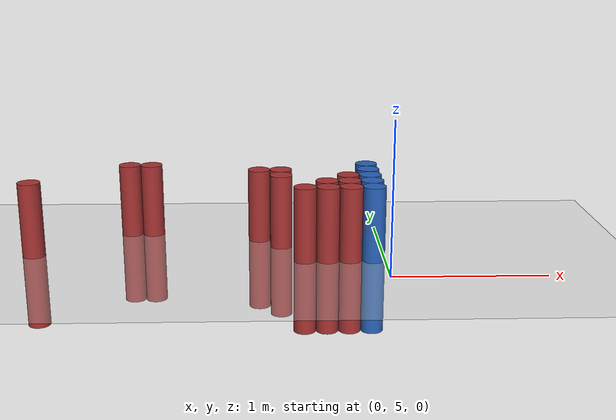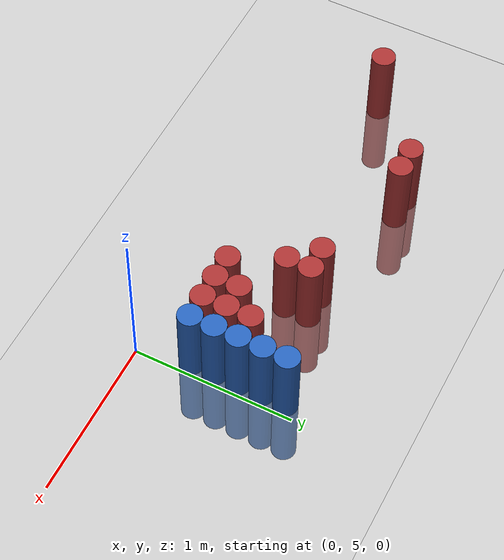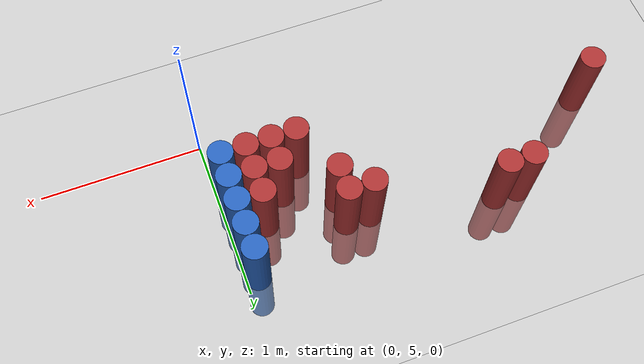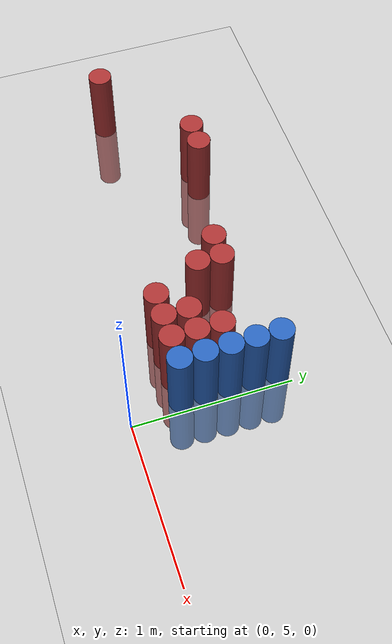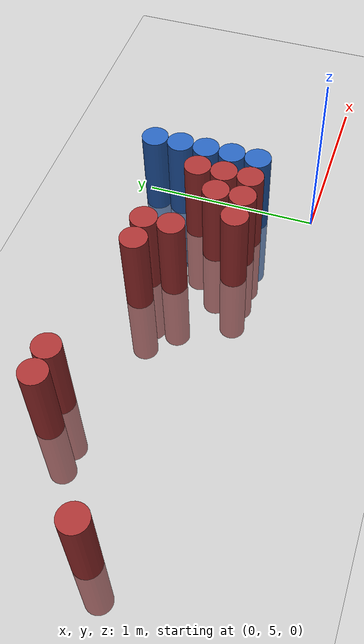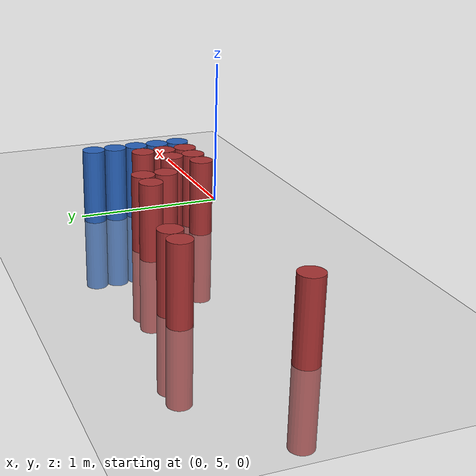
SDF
<sdf version="1.6">
 <world name="default">
  <model name="ground_plane">
   <static>1</static>
   <link name="link">
    <collision name="collision">
     <geometry><plane><normal>0 0 1</normal><size>100 100</size></plane></geometry>
     <surface><friction><ode><mu>100</mu><mu2>50</mu2></ode></friction></surface>
    </collision>
    <visual name="visual">
     <cast_shadows>0</cast_shadows>
     <geometry><plane><normal>0 0 1</normal><size>100 100</size></plane></geometry>
     <material>
      <script><uri>file://media/materials/scripts/gazebo.material</uri><name>Gazebo/Grey</name></script>
     </material>
    </visual>
   </link>
  </model>
  <model name="unit_cylinder_199">
   <static>1</static>
   <pose>-2.325000 5.475000 0.000000 0.000000 0.000000 0.000000</pose>
   <link name="link">
    <inertial>
     <mass>1</mass>
     <inertia><ixx>0.145833</ixx><ixy>0</ixy><ixz>0</ixz><iyy>0.145833</iyy><iyz>0</iyz><izz>0.125</izz></inertia>
    </inertial>
    <collision name="collision">
     <geometry><cylinder><radius>0.075000</radius><length>1</length></cylinder></geometry>
    </collision>
    <visual name="visual">
     <geometry><cylinder><radius>0.075000</radius><length>1</length></cylinder></geometry>
     <material>
      <ambient>0.648000 0.192000 0.192000 1</ambient>
      <diffuse>0.648000 0.192000 0.192000 1</diffuse>
     </material>
     <material>
      <script><name>Gazebo/Grey</name><uri>file://media/materials/scripts/gazebo.material</uri></script>
     </material>
    </visual>
   </link>
  </model>
  <model name="unit_cylinder_212">
   <static>1</static>
   <pose>-1.725000 5.925000 0.000000 0.000000 0.000000 0.000000</pose>
   <link name="link">
    <inertial>
     <mass>1</mass>
     <inertia><ixx>0.145833</ixx><ixy>0</ixy><ixz>0</ixz><iyy>0.145833</iyy><iyz>0</iyz><izz>0.125</izz></inertia>
    </inertial>
    <collision name="collision">
     <geometry><cylinder><radius>0.075000</radius><length>1</length></cylinder></geometry>
    </collision>
    <visual name="visual">
     <geometry><cylinder><radius>0.075000</radius><length>1</length></cylinder></geometry>
     <material>
      <ambient>0.648000 0.192000 0.192000 1</ambient>
      <diffuse>0.648000 0.192000 0.192000 1</diffuse>
     </material>
     <material>
      <script><name>Gazebo/Grey</name><uri>file://media/materials/scripts/gazebo.material</uri></script>
     </material>
    </visual>
   </link>
  </model>
  <model name="unit_cylinder_215">
   <static>1</static>
   <pose>-1.575000 5.925000 0.000000 0.000000 0.000000 0.000000</pose>
   <link name="link">
    <inertial>
     <mass>1</mass>
     <inertia><ixx>0.145833</ixx><ixy>0</ixy><ixz>0</ixz><iyy>0.145833</iyy><iyz>0</iyz><izz>0.125</izz></inertia>
    </inertial>
    <collision name="collision">
     <geometry><cylinder><radius>0.075000</radius><length>1</length></cylinder></geometry>
    </collision>
    <visual name="visual">
     <geometry><cylinder><radius>0.075000</radius><length>1</length></cylinder></geometry>
     <material>
      <ambient>0.648000 0.192000 0.192000 1</ambient>
      <diffuse>0.648000 0.192000 0.192000 1</diffuse>
     </material>
     <material>
      <script><name>Gazebo/Grey</name><uri>file://media/materials/scripts/gazebo.material</uri></script>
     </material>
    </visual>
   </link>
  </model>
  <model name="unit_cylinder_220">
   <static>1</static>
   <pose>-0.825000 5.775000 0.000000 0.000000 0.000000 0.000000</pose>
   <link name="link">
    <inertial>
     <mass>1</mass>
     <inertia><ixx>0.145833</ixx><ixy>0</ixy><ixz>0</ixz><iyy>0.145833</iyy><iyz>0</iyz><izz>0.125</izz></inertia>
    </inertial>
    <collision name="collision">
     <geometry><cylinder><radius>0.075000</radius><length>1</length></cylinder></geometry>
    </collision>
    <visual name="visual">
     <geometry><cylinder><radius>0.075000</radius><length>1</length></cylinder></geometry>
     <material>
      <ambient>0.648000 0.192000 0.192000 1</ambient>
      <diffuse>0.648000 0.192000 0.192000 1</diffuse>
     </material>
     <material>
      <script><name>Gazebo/Grey</name><uri>file://media/materials/scripts/gazebo.material</uri></script>
     </material>
    </visual>
   </link>
  </model>
  <model name="unit_cylinder_224">
   <static>1</static>
   <pose>-0.675000 5.625000 0.000000 0.000000 0.000000 0.000000</pose>
   <link name="link">
    <inertial>
     <mass>1</mass>
     <inertia><ixx>0.145833</ixx><ixy>0</ixy><ixz>0</ixz><iyy>0.145833</iyy><iyz>0</iyz><izz>0.125</izz></inertia>
    </inertial>
    <collision name="collision">
     <geometry><cylinder><radius>0.075000</radius><length>1</length></cylinder></geometry>
    </collision>
    <visual name="visual">
     <geometry><cylinder><radius>0.075000</radius><length>1</length></cylinder></geometry>
     <material>
      <ambient>0.648000 0.192000 0.192000 1</ambient>
      <diffuse>0.648000 0.192000 0.192000 1</diffuse>
     </material>
     <material>
      <script><name>Gazebo/Grey</name><uri>file://media/materials/scripts/gazebo.material</uri></script>
     </material>
    </visual>
   </link>
  </model>
  <model name="unit_cylinder_225">
   <static>1</static>
   <pose>-0.675000 5.775000 0.000000 0.000000 0.000000 0.000000</pose>
   <link name="link">
    <inertial>
     <mass>1</mass>
     <inertia><ixx>0.145833</ixx><ixy>0</ixy><ixz>0</ixz><iyy>0.145833</iyy><iyz>0</iyz><izz>0.125</izz></inertia>
    </inertial>
    <collision name="collision">
     <geometry><cylinder><radius>0.075000</radius><length>1</length></cylinder></geometry>
    </collision>
    <visual name="visual">
     <geometry><cylinder><radius>0.075000</radius><length>1</length></cylinder></geometry>
     <material>
      <ambient>0.648000 0.192000 0.192000 1</ambient>
      <diffuse>0.648000 0.192000 0.192000 1</diffuse>
     </material>
     <material>
      <script><name>Gazebo/Grey</name><uri>file://media/materials/scripts/gazebo.material</uri></script>
     </material>
    </visual>
   </link>
  </model>
  <model name="unit_cylinder_228">
   <static>1</static>
   <pose>-0.525000 5.325000 0.000000 0.000000 0.000000 0.000000</pose>
   <link name="link">
    <inertial>
     <mass>1</mass>
     <inertia><ixx>0.145833</ixx><ixy>0</ixy><ixz>0</ixz><iyy>0.145833</iyy><iyz>0</iyz><izz>0.125</izz></inertia>
    </inertial>
    <collision name="collision">
     <geometry><cylinder><radius>0.075000</radius><length>1</length></cylinder></geometry>
    </collision>
    <visual name="visual">
     <geometry><cylinder><radius>0.075000</radius><length>1</length></cylinder></geometry>
     <material>
      <ambient>0.648000 0.192000 0.192000 1</ambient>
      <diffuse>0.648000 0.192000 0.192000 1</diffuse>
     </material>
     <material>
      <script><name>Gazebo/Grey</name><uri>file://media/materials/scripts/gazebo.material</uri></script>
     </material>
    </visual>
   </link>
  </model>
  <model name="unit_cylinder_229">
   <static>1</static>
   <pose>-0.375000 5.325000 0.000000 0.000000 0.000000 0.000000</pose>
   <link name="link">
    <inertial>
     <mass>1</mass>
     <inertia><ixx>0.145833</ixx><ixy>0</ixy><ixz>0</ixz><iyy>0.145833</iyy><iyz>0</iyz><izz>0.125</izz></inertia>
    </inertial>
    <collision name="collision">
     <geometry><cylinder><radius>0.075000</radius><length>1</length></cylinder></geometry>
    </collision>
    <visual name="visual">
     <geometry><cylinder><radius>0.075000</radius><length>1</length></cylinder></geometry>
     <material>
      <ambient>0.648000 0.192000 0.192000 1</ambient>
      <diffuse>0.648000 0.192000 0.192000 1</diffuse>
     </material>
     <material>
      <script><name>Gazebo/Grey</name><uri>file://media/materials/scripts/gazebo.material</uri></script>
     </material>
    </visual>
   </link>
  </model>
  <model name="unit_cylinder_230">
   <static>1</static>
   <pose>-0.375000 5.475000 0.000000 0.000000 0.000000 0.000000</pose>
   <link name="link">
    <inertial>
     <mass>1</mass>
     <inertia><ixx>0.145833</ixx><ixy>0</ixy><ixz>0</ixz><iyy>0.145833</iyy><iyz>0</iyz><izz>0.125</izz></inertia>
    </inertial>
    <collision name="collision">
     <geometry><cylinder><radius>0.075000</radius><length>1</length></cylinder></geometry>
    </collision>
    <visual name="visual">
     <geometry><cylinder><radius>0.075000</radius><length>1</length></cylinder></geometry>
     <material>
      <ambient>0.648000 0.192000 0.192000 1</ambient>
      <diffuse>0.648000 0.192000 0.192000 1</diffuse>
     </material>
     <material>
      <script><name>Gazebo/Grey</name><uri>file://media/materials/scripts/gazebo.material</uri></script>
     </material>
    </visual>
   </link>
  </model>
  <model name="unit_cylinder_231">
   <static>1</static>
   <pose>-0.225000 5.325000 0.000000 0.000000 0.000000 0.000000</pose>
   <link name="link">
    <inertial>
     <mass>1</mass>
     <inertia><ixx>0.145833</ixx><ixy>0</ixy><ixz>0</ixz><iyy>0.145833</iyy><iyz>0</iyz><izz>0.125</izz></inertia>
    </inertial>
    <collision name="collision">
     <geometry><cylinder><radius>0.075000</radius><length>1</length></cylinder></geometry>
    </collision>
    <visual name="visual">
     <geometry><cylinder><radius>0.075000</radius><length>1</length></cylinder></geometry>
     <material>
      <ambient>0.648000 0.192000 0.192000 1</ambient>
      <diffuse>0.648000 0.192000 0.192000 1</diffuse>
     </material>
     <material>
      <script><name>Gazebo/Grey</name><uri>file://media/materials/scripts/gazebo.material</uri></script>
     </material>
    </visual>
   </link>
  </model>
  <model name="unit_cylinder_232">
   <static>1</static>
   <pose>-0.225000 5.475000 0.000000 0.000000 0.000000 0.000000</pose>
   <link name="link">
    <inertial>
     <mass>1</mass>
     <inertia><ixx>0.145833</ixx><ixy>0</ixy><ixz>0</ixz><iyy>0.145833</iyy><iyz>0</iyz><izz>0.125</izz></inertia>
    </inertial>
    <collision name="collision">
     <geometry><cylinder><radius>0.075000</radius><length>1</length></cylinder></geometry>
    </collision>
    <visual name="visual">
     <geometry><cylinder><radius>0.075000</radius><length>1</length></cylinder></geometry>
     <material>
      <ambient>0.648000 0.192000 0.192000 1</ambient>
      <diffuse>0.648000 0.192000 0.192000 1</diffuse>
     </material>
     <material>
      <script><name>Gazebo/Grey</name><uri>file://media/materials/scripts/gazebo.material</uri></script>
     </material>
    </visual>
   </link>
  </model>
  <model name="unit_cylinder_233">
   <static>1</static>
   <pose>-0.225000 5.625000 0.000000 0.000000 0.000000 0.000000</pose>
   <link name="link">
    <inertial>
     <mass>1</mass>
     <inertia><ixx>0.145833</ixx><ixy>0</ixy><ixz>0</ixz><iyy>0.145833</iyy><iyz>0</iyz><izz>0.125</izz></inertia>
    </inertial>
    <collision name="collision">
     <geometry><cylinder><radius>0.075000</radius><length>1</length></cylinder></geometry>
    </collision>
    <visual name="visual">
     <geometry><cylinder><radius>0.075000</radius><length>1</length></cylinder></geometry>
     <material>
      <ambient>0.648000 0.192000 0.192000 1</ambient>
      <diffuse>0.648000 0.192000 0.192000 1</diffuse>
     </material>
     <material>
      <script><name>Gazebo/Grey</name><uri>file://media/materials/scripts/gazebo.material</uri></script>
     </material>
    </visual>
   </link>
  </model>
  <model name="unit_cylinder_235">
   <static>1</static>
   <pose>-0.075000 5.325000 0.000000 0.000000 0.000000 0.000000</pose>
   <link name="link">
    <inertial>
     <mass>1</mass>
     <inertia><ixx>0.145833</ixx><ixy>0</ixy><ixz>0</ixz><iyy>0.145833</iyy><iyz>0</iyz><izz>0.125</izz></inertia>
    </inertial>
    <collision name="collision">
     <geometry><cylinder><radius>0.075000</radius><length>1</length></cylinder></geometry>
    </collision>
    <visual name="visual">
     <geometry><cylinder><radius>0.075000</radius><length>1</length></cylinder></geometry>
     <material>
      <ambient>0.152000 0.379000 0.720000 1</ambient>
      <diffuse>0.152000 0.379000 0.720000 1</diffuse>
     </material>
     <material>
      <script><name>Gazebo/Grey</name><uri>file://media/materials/scripts/gazebo.material</uri></script>
     </material>
    </visual>
   </link>
  </model>
  <model name="unit_cylinder_236">
   <static>1</static>
   <pose>-0.075000 5.475000 0.000000 0.000000 0.000000 0.000000</pose>
   <link name="link">
    <inertial>
     <mass>1</mass>
     <inertia><ixx>0.145833</ixx><ixy>0</ixy><ixz>0</ixz><iyy>0.145833</iyy><iyz>0</iyz><izz>0.125</izz></inertia>
    </inertial>
    <collision name="collision">
     <geometry><cylinder><radius>0.075000</radius><length>1</length></cylinder></geometry>
    </collision>
    <visual name="visual">
     <geometry><cylinder><radius>0.075000</radius><length>1</length></cylinder></geometry>
     <material>
      <ambient>0.152000 0.379000 0.720000 1</ambient>
      <diffuse>0.152000 0.379000 0.720000 1</diffuse>
     </material>
     <material>
      <script><name>Gazebo/Grey</name><uri>file://media/materials/scripts/gazebo.material</uri></script>
     </material>
    </visual>
   </link>
  </model>
  <model name="unit_cylinder_237">
   <static>1</static>
   <pose>-0.075000 5.625000 0.000000 0.000000 0.000000 0.000000</pose>
   <link name="link">
    <inertial>
     <mass>1</mass>
     <inertia><ixx>0.145833</ixx><ixy>0</ixy><ixz>0</ixz><iyy>0.145833</iyy><iyz>0</iyz><izz>0.125</izz></inertia>
    </inertial>
    <collision name="collision">
     <geometry><cylinder><radius>0.075000</radius><length>1</length></cylinder></geometry>
    </collision>
    <visual name="visual">
     <geometry><cylinder><radius>0.075000</radius><length>1</length></cylinder></geometry>
     <material>
      <ambient>0.152000 0.379000 0.720000 1</ambient>
      <diffuse>0.152000 0.379000 0.720000 1</diffuse>
     </material>
     <material>
      <script><name>Gazebo/Grey</name><uri>file://media/materials/scripts/gazebo.material</uri></script>
     </material>
    </visual>
   </link>
  </model>
  <model name="unit_cylinder_238">
   <static>1</static>
   <pose>-0.075000 5.775000 0.000000 0.000000 0.000000 0.000000</pose>
   <link name="link">
    <inertial>
     <mass>1</mass>
     <inertia><ixx>0.145833</ixx><ixy>0</ixy><ixz>0</ixz><iyy>0.145833</iyy><iyz>0</iyz><izz>0.125</izz></inertia>
    </inertial>
    <collision name="collision">
     <geometry><cylinder><radius>0.075000</radius><length>1</length></cylinder></geometry>
    </collision>
    <visual name="visual">
     <geometry><cylinder><radius>0.075000</radius><length>1</length></cylinder></geometry>
     <material>
      <ambient>0.152000 0.379000 0.720000 1</ambient>
      <diffuse>0.152000 0.379000 0.720000 1</diffuse>
     </material>
     <material>
      <script><name>Gazebo/Grey</name><uri>file://media/materials/scripts/gazebo.material</uri></script>
     </material>
    </visual>
   </link>
  </model>
  <model name="unit_cylinder_239">
   <static>1</static>
   <pose>-0.075000 5.925000 0.000000 0.000000 0.000000 0.000000</pose>
   <link name="link">
    <inertial>
     <mass>1</mass>
     <inertia><ixx>0.145833</ixx><ixy>0</ixy><ixz>0</ixz><iyy>0.145833</iyy><iyz>0</iyz><izz>0.125</izz></inertia>
    </inertial>
    <collision name="collision">
     <geometry><cylinder><radius>0.075000</radius><length>1</length></cylinder></geometry>
    </collision>
    <visual name="visual">
     <geometry><cylinder><radius>0.075000</radius><length>1</length></cylinder></geometry>
     <material>
      <ambient>0.152000 0.379000 0.720000 1</ambient>
      <diffuse>0.152000 0.379000 0.720000 1</diffuse>
     </material>
     <material>
      <script><name>Gazebo/Grey</name><uri>file://media/materials/scripts/gazebo.material</uri></script>
     </material>
    </visual>
   </link>
  </model>
 </world>
</sdf>
